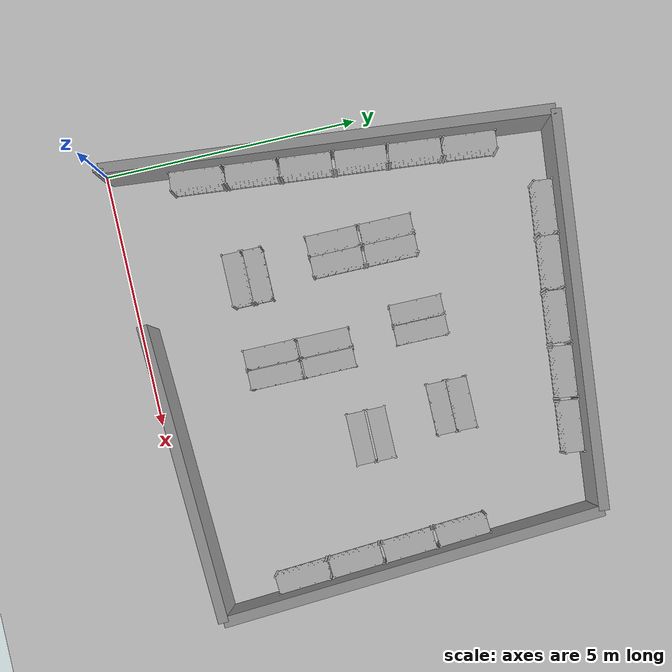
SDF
<sdf version="1.6">
  <world name="default">
    <light name="sun" type="directional">
      <cast_shadows>1</cast_shadows>
      <pose frame="">0 0 10 0 -0 0</pose>
      <diffuse>0.8 0.8 0.8 1</diffuse>
      <specular>0.2 0.2 0.2 1</specular>
      <attenuation>
        <range>1000</range>
        <constant>0.9</constant>
        <linear>0.01</linear>
        <quadratic>0.001</quadratic>
      </attenuation>
      <direction>-0.5 0.1 -0.9</direction>
    </light>
    <model name="ground_plane">
      <static>1</static>
      <link name="link">
        <collision name="collision">
          <geometry>
            <plane>
              <normal>0 0 1</normal>
              <size>100 100</size>
            </plane>
          </geometry>
          <surface>
            <contact>
              <collide_bitmask>65535</collide_bitmask>
              <ode />
            </contact>
            <friction>
              <ode>
                <mu>1000</mu>
                <mu2>1000</mu2>
              </ode>
              <torsional>
                <ode />
              </torsional>
            </friction>
            <bounce />
          </surface>
          <max_contacts>10</max_contacts>
        </collision>
        <visual name="visual">
          <cast_shadows>0</cast_shadows>
          <geometry>
            <plane>
              <normal>0 0 1</normal>
              <size>100 100</size>
            </plane>
          </geometry>
          <material>
            <script>
              <uri>file://media/materials/scripts/gazebo.material</uri>
              <name>Gazebo/Grey</name>
            </script>
          </material>
        </visual>
        <self_collide>0</self_collide>
        <enable_wind>0</enable_wind>
        <kinematic>0</kinematic>
      </link>
    </model>
    <gravity>0 0 -9.8</gravity>
    <magnetic_field>6e-06 2.3e-05 -4.2e-05</magnetic_field>
    <atmosphere type="adiabatic" />
    <physics name="default_physics" default="0" type="ode">
      <max_step_size>0.001</max_step_size>
      <real_time_factor>1</real_time_factor>
      <real_time_update_rate>1000</real_time_update_rate>
    </physics>
    <scene>
      <ambient>0.4 0.4 0.4 1</ambient>
      <background>0.7 0.7 0.7 1</background>
      <shadows>1</shadows>
    </scene>
    <audio>
      <device>default</device>
    </audio>
    <wind />
    <spherical_coordinates>
      <surface_model>EARTH_WGS84</surface_model>
      <latitude_deg>0</latitude_deg>
      <longitude_deg>0</longitude_deg>
      <elevation>0</elevation>
      <heading_deg>0</heading_deg>
    </spherical_coordinates>
    <gui fullscreen="0">
      <camera name="user_camera">
        <pose frame="">5.5458 -17.3868 19.7357 0 0.841797 1.67218</pose>
        <view_controller>orbit</view_controller>
        <projection_type>perspective</projection_type>
      </camera>
    </gui>
    <plugin name="ActorPosesPlugin" filename="libActorPosesPlugin.so" />
    <model name="store_shelf_moduled_0">
      <link name="link">
        <collision name="collision">
          <geometry>
            <mesh>
              <uri>model://store_shelf_moduled/meshes/store_shelf_moduled.dae</uri>
            </mesh>
          </geometry>
        </collision>
        <visual name="visual">
          <geometry>
            <mesh>
              <uri>model://store_shelf_moduled/meshes/store_shelf_moduled.dae</uri>
            </mesh>
          </geometry>
        </visual>
        <inertial>
          <mass>1000</mass>
          <inertia>
            <ixx>840083</ixx>
            <ixy>0</ixy>
            <ixz>0</ixz>
            <iyy>475500</iyy>
            <iyz>0</iyz>
            <izz>1.30208e+06</izz>
          </inertia>
        </inertial>
        <self_collide>0</self_collide>
        <enable_wind>0</enable_wind>
        <kinematic>0</kinematic>
      </link>
      <static>1</static>
      <pose frame="">8.680195 1.563754 0 0 0 1.6333</pose>
    </model>
    <model name="store_shelf_moduled_1">
      <link name="link">
        <collision name="collision">
          <geometry>
            <mesh>
              <uri>model://store_shelf_moduled/meshes/store_shelf_moduled.dae</uri>
            </mesh>
          </geometry>
        </collision>
        <visual name="visual">
          <geometry>
            <mesh>
              <uri>model://store_shelf_moduled/meshes/store_shelf_moduled.dae</uri>
            </mesh>
          </geometry>
        </visual>
        <inertial>
          <mass>1000</mass>
          <inertia>
            <ixx>840083</ixx>
            <ixy>0</ixy>
            <ixz>0</ixz>
            <iyy>475500</iyy>
            <iyz>0</iyz>
            <izz>1.30208e+06</izz>
          </inertia>
        </inertial>
        <self_collide>0</self_collide>
        <enable_wind>0</enable_wind>
        <kinematic>0</kinematic>
      </link>
      <static>1</static>
      <pose frame="">8.610195 2.623754 0 0 0 1.6333</pose>
    </model>
    <model name="store_shelf_moduled_2">
      <link name="link">
        <collision name="collision">
          <geometry>
            <mesh>
              <uri>model://store_shelf_moduled/meshes/store_shelf_moduled.dae</uri>
            </mesh>
          </geometry>
        </collision>
        <visual name="visual">
          <geometry>
            <mesh>
              <uri>model://store_shelf_moduled/meshes/store_shelf_moduled.dae</uri>
            </mesh>
          </geometry>
        </visual>
        <inertial>
          <mass>1000</mass>
          <inertia>
            <ixx>840083</ixx>
            <ixy>0</ixy>
            <ixz>0</ixz>
            <iyy>475500</iyy>
            <iyz>0</iyz>
            <izz>1.30208e+06</izz>
          </inertia>
        </inertial>
        <self_collide>0</self_collide>
        <enable_wind>0</enable_wind>
        <kinematic>0</kinematic>
      </link>
      <static>1</static>
      <pose frame="">8.550196 3.683754 0 0 0 1.6333</pose>
    </model>
    <model name="store_shelf_moduled_3">
      <link name="link">
        <collision name="collision">
          <geometry>
            <mesh>
              <uri>model://store_shelf_moduled/meshes/store_shelf_moduled.dae</uri>
            </mesh>
          </geometry>
        </collision>
        <visual name="visual">
          <geometry>
            <mesh>
              <uri>model://store_shelf_moduled/meshes/store_shelf_moduled.dae</uri>
            </mesh>
          </geometry>
        </visual>
        <inertial>
          <mass>1000</mass>
          <inertia>
            <ixx>840083</ixx>
            <ixy>0</ixy>
            <ixz>0</ixz>
            <iyy>475500</iyy>
            <iyz>0</iyz>
            <izz>1.30208e+06</izz>
          </inertia>
        </inertial>
        <self_collide>0</self_collide>
        <enable_wind>0</enable_wind>
        <kinematic>0</kinematic>
      </link>
      <static>1</static>
      <pose frame="">8.480195 4.743753 0 0 0 1.6333</pose>
    </model>
    <model name="store_shelf_moduled_4">
      <link name="link">
        <collision name="collision">
          <geometry>
            <mesh>
              <uri>model://store_shelf_moduled/meshes/store_shelf_moduled.dae</uri>
            </mesh>
          </geometry>
        </collision>
        <visual name="visual">
          <geometry>
            <mesh>
              <uri>model://store_shelf_moduled/meshes/store_shelf_moduled.dae</uri>
            </mesh>
          </geometry>
        </visual>
        <inertial>
          <mass>1000</mass>
          <inertia>
            <ixx>840083</ixx>
            <ixy>0</ixy>
            <ixz>0</ixz>
            <iyy>475500</iyy>
            <iyz>0</iyz>
            <izz>1.30208e+06</izz>
          </inertia>
        </inertial>
        <self_collide>0</self_collide>
        <enable_wind>0</enable_wind>
        <kinematic>0</kinematic>
      </link>
      <static>1</static>
      <pose frame="">7.319379 7.880566 0 0 0 3.035187</pose>
    </model>
    <model name="store_shelf_moduled_5">
      <link name="link">
        <collision name="collision">
          <geometry>
            <mesh>
              <uri>model://store_shelf_moduled/meshes/store_shelf_moduled.dae</uri>
            </mesh>
          </geometry>
        </collision>
        <visual name="visual">
          <geometry>
            <mesh>
              <uri>model://store_shelf_moduled/meshes/store_shelf_moduled.dae</uri>
            </mesh>
          </geometry>
        </visual>
        <inertial>
          <mass>1000</mass>
          <inertia>
            <ixx>840083</ixx>
            <ixy>0</ixy>
            <ixz>0</ixz>
            <iyy>475500</iyy>
            <iyz>0</iyz>
            <izz>1.30208e+06</izz>
          </inertia>
        </inertial>
        <self_collide>0</self_collide>
        <enable_wind>0</enable_wind>
        <kinematic>0</kinematic>
      </link>
      <static>1</static>
      <pose frame="">6.269379 7.990566 0 0 0 3.035187</pose>
    </model>
    <model name="store_shelf_moduled_6">
      <link name="link">
        <collision name="collision">
          <geometry>
            <mesh>
              <uri>model://store_shelf_moduled/meshes/store_shelf_moduled.dae</uri>
            </mesh>
          </geometry>
        </collision>
        <visual name="visual">
          <geometry>
            <mesh>
              <uri>model://store_shelf_moduled/meshes/store_shelf_moduled.dae</uri>
            </mesh>
          </geometry>
        </visual>
        <inertial>
          <mass>1000</mass>
          <inertia>
            <ixx>840083</ixx>
            <ixy>0</ixy>
            <ixz>0</ixz>
            <iyy>475500</iyy>
            <iyz>0</iyz>
            <izz>1.30208e+06</izz>
          </inertia>
        </inertial>
        <self_collide>0</self_collide>
        <enable_wind>0</enable_wind>
        <kinematic>0</kinematic>
      </link>
      <static>1</static>
      <pose frame="">5.209379 8.100566 0 0 0 3.035187</pose>
    </model>
    <model name="store_shelf_moduled_7">
      <link name="link">
        <collision name="collision">
          <geometry>
            <mesh>
              <uri>model://store_shelf_moduled/meshes/store_shelf_moduled.dae</uri>
            </mesh>
          </geometry>
        </collision>
        <visual name="visual">
          <geometry>
            <mesh>
              <uri>model://store_shelf_moduled/meshes/store_shelf_moduled.dae</uri>
            </mesh>
          </geometry>
        </visual>
        <inertial>
          <mass>1000</mass>
          <inertia>
            <ixx>840083</ixx>
            <ixy>0</ixy>
            <ixz>0</ixz>
            <iyy>475500</iyy>
            <iyz>0</iyz>
            <izz>1.30208e+06</izz>
          </inertia>
        </inertial>
        <self_collide>0</self_collide>
        <enable_wind>0</enable_wind>
        <kinematic>0</kinematic>
      </link>
      <static>1</static>
      <pose frame="">4.159379 8.220566 0 0 0 3.035187</pose>
    </model>
    <model name="store_shelf_moduled_8">
      <link name="link">
        <collision name="collision">
          <geometry>
            <mesh>
              <uri>model://store_shelf_moduled/meshes/store_shelf_moduled.dae</uri>
            </mesh>
          </geometry>
        </collision>
        <visual name="visual">
          <geometry>
            <mesh>
              <uri>model://store_shelf_moduled/meshes/store_shelf_moduled.dae</uri>
            </mesh>
          </geometry>
        </visual>
        <inertial>
          <mass>1000</mass>
          <inertia>
            <ixx>840083</ixx>
            <ixy>0</ixy>
            <ixz>0</ixz>
            <iyy>475500</iyy>
            <iyz>0</iyz>
            <izz>1.30208e+06</izz>
          </inertia>
        </inertial>
        <self_collide>0</self_collide>
        <enable_wind>0</enable_wind>
        <kinematic>0</kinematic>
      </link>
      <static>1</static>
      <pose frame="">3.09938 8.330565 0 0 0 3.035187</pose>
    </model>
    <model name="store_shelf_moduled_9">
      <link name="link">
        <collision name="collision">
          <geometry>
            <mesh>
              <uri>model://store_shelf_moduled/meshes/store_shelf_moduled.dae</uri>
            </mesh>
          </geometry>
        </collision>
        <visual name="visual">
          <geometry>
            <mesh>
              <uri>model://store_shelf_moduled/meshes/store_shelf_moduled.dae</uri>
            </mesh>
          </geometry>
        </visual>
        <inertial>
          <mass>1000</mass>
          <inertia>
            <ixx>840083</ixx>
            <ixy>0</ixy>
            <ixz>0</ixz>
            <iyy>475500</iyy>
            <iyz>0</iyz>
            <izz>1.30208e+06</izz>
          </inertia>
        </inertial>
        <self_collide>0</self_collide>
        <enable_wind>0</enable_wind>
        <kinematic>0</kinematic>
      </link>
      <static>1</static>
      <pose frame="">0.8995671 7.600706 0 0 0 -1.663876</pose>
    </model>
    <model name="store_shelf_moduled_10">
      <link name="link">
        <collision name="collision">
          <geometry>
            <mesh>
              <uri>model://store_shelf_moduled/meshes/store_shelf_moduled.dae</uri>
            </mesh>
          </geometry>
        </collision>
        <visual name="visual">
          <geometry>
            <mesh>
              <uri>model://store_shelf_moduled/meshes/store_shelf_moduled.dae</uri>
            </mesh>
          </geometry>
        </visual>
        <inertial>
          <mass>1000</mass>
          <inertia>
            <ixx>840083</ixx>
            <ixy>0</ixy>
            <ixz>0</ixz>
            <iyy>475500</iyy>
            <iyz>0</iyz>
            <izz>1.30208e+06</izz>
          </inertia>
        </inertial>
        <self_collide>0</self_collide>
        <enable_wind>0</enable_wind>
        <kinematic>0</kinematic>
      </link>
      <static>1</static>
      <pose frame="">0.7995671 6.540706 0 0 0 -1.663876</pose>
    </model>
    <model name="store_shelf_moduled_11">
      <link name="link">
        <collision name="collision">
          <geometry>
            <mesh>
              <uri>model://store_shelf_moduled/meshes/store_shelf_moduled.dae</uri>
            </mesh>
          </geometry>
        </collision>
        <visual name="visual">
          <geometry>
            <mesh>
              <uri>model://store_shelf_moduled/meshes/store_shelf_moduled.dae</uri>
            </mesh>
          </geometry>
        </visual>
        <inertial>
          <mass>1000</mass>
          <inertia>
            <ixx>840083</ixx>
            <ixy>0</ixy>
            <ixz>0</ixz>
            <iyy>475500</iyy>
            <iyz>0</iyz>
            <izz>1.30208e+06</izz>
          </inertia>
        </inertial>
        <self_collide>0</self_collide>
        <enable_wind>0</enable_wind>
        <kinematic>0</kinematic>
      </link>
      <static>1</static>
      <pose frame="">0.6995671 5.490705 0 0 0 -1.663876</pose>
    </model>
    <model name="store_shelf_moduled_12">
      <link name="link">
        <collision name="collision">
          <geometry>
            <mesh>
              <uri>model://store_shelf_moduled/meshes/store_shelf_moduled.dae</uri>
            </mesh>
          </geometry>
        </collision>
        <visual name="visual">
          <geometry>
            <mesh>
              <uri>model://store_shelf_moduled/meshes/store_shelf_moduled.dae</uri>
            </mesh>
          </geometry>
        </visual>
        <inertial>
          <mass>1000</mass>
          <inertia>
            <ixx>840083</ixx>
            <ixy>0</ixy>
            <ixz>0</ixz>
            <iyy>475500</iyy>
            <iyz>0</iyz>
            <izz>1.30208e+06</izz>
          </inertia>
        </inertial>
        <self_collide>0</self_collide>
        <enable_wind>0</enable_wind>
        <kinematic>0</kinematic>
      </link>
      <static>1</static>
      <pose frame="">0.5995671 4.430706 0 0 0 -1.663876</pose>
    </model>
    <model name="store_shelf_moduled_13">
      <link name="link">
        <collision name="collision">
          <geometry>
            <mesh>
              <uri>model://store_shelf_moduled/meshes/store_shelf_moduled.dae</uri>
            </mesh>
          </geometry>
        </collision>
        <visual name="visual">
          <geometry>
            <mesh>
              <uri>model://store_shelf_moduled/meshes/store_shelf_moduled.dae</uri>
            </mesh>
          </geometry>
        </visual>
        <inertial>
          <mass>1000</mass>
          <inertia>
            <ixx>840083</ixx>
            <ixy>0</ixy>
            <ixz>0</ixz>
            <iyy>475500</iyy>
            <iyz>0</iyz>
            <izz>1.30208e+06</izz>
          </inertia>
        </inertial>
        <self_collide>0</self_collide>
        <enable_wind>0</enable_wind>
        <kinematic>0</kinematic>
      </link>
      <static>1</static>
      <pose frame="">0.4995671 3.380706 0 0 0 -1.663876</pose>
    </model>
    <model name="store_shelf_moduled_14">
      <link name="link">
        <collision name="collision">
          <geometry>
            <mesh>
              <uri>model://store_shelf_moduled/meshes/store_shelf_moduled.dae</uri>
            </mesh>
          </geometry>
        </collision>
        <visual name="visual">
          <geometry>
            <mesh>
              <uri>model://store_shelf_moduled/meshes/store_shelf_moduled.dae</uri>
            </mesh>
          </geometry>
        </visual>
        <inertial>
          <mass>1000</mass>
          <inertia>
            <ixx>840083</ixx>
            <ixy>0</ixy>
            <ixz>0</ixz>
            <iyy>475500</iyy>
            <iyz>0</iyz>
            <izz>1.30208e+06</izz>
          </inertia>
        </inertial>
        <self_collide>0</self_collide>
        <enable_wind>0</enable_wind>
        <kinematic>0</kinematic>
      </link>
      <static>1</static>
      <pose frame="">0.3995671 2.320706 0 0 0 -1.663876</pose>
    </model>
    <model name="store_shelf_moduled_15">
      <link name="link">
        <collision name="collision">
          <geometry>
            <mesh>
              <uri>model://store_shelf_moduled/meshes/store_shelf_moduled.dae</uri>
            </mesh>
          </geometry>
        </collision>
        <visual name="visual">
          <geometry>
            <mesh>
              <uri>model://store_shelf_moduled/meshes/store_shelf_moduled.dae</uri>
            </mesh>
          </geometry>
        </visual>
        <inertial>
          <mass>1000</mass>
          <inertia>
            <ixx>840083</ixx>
            <ixy>0</ixy>
            <ixz>0</ixz>
            <iyy>475500</iyy>
            <iyz>0</iyz>
            <izz>1.30208e+06</izz>
          </inertia>
        </inertial>
        <self_collide>0</self_collide>
        <enable_wind>0</enable_wind>
        <kinematic>0</kinematic>
      </link>
      <static>1</static>
      <pose frame="">2.07 2.31 0 0 0 0</pose>
    </model>
    <model name="store_shelf_moduled_16">
      <link name="link">
        <collision name="collision">
          <geometry>
            <mesh>
              <uri>model://store_shelf_moduled/meshes/store_shelf_moduled.dae</uri>
            </mesh>
          </geometry>
        </collision>
        <visual name="visual">
          <geometry>
            <mesh>
              <uri>model://store_shelf_moduled/meshes/store_shelf_moduled.dae</uri>
            </mesh>
          </geometry>
        </visual>
        <inertial>
          <mass>1000</mass>
          <inertia>
            <ixx>840083</ixx>
            <ixy>0</ixy>
            <ixz>0</ixz>
            <iyy>475500</iyy>
            <iyz>0</iyz>
            <izz>1.30208e+06</izz>
          </inertia>
        </inertial>
        <self_collide>0</self_collide>
        <enable_wind>0</enable_wind>
        <kinematic>0</kinematic>
      </link>
      <static>1</static>
      <pose frame="">3.13 2.31 0 0 0 -3.141593</pose>
    </model>
    <model name="store_shelf_moduled_17">
      <link name="link">
        <collision name="collision">
          <geometry>
            <mesh>
              <uri>model://store_shelf_moduled/meshes/store_shelf_moduled.dae</uri>
            </mesh>
          </geometry>
        </collision>
        <visual name="visual">
          <geometry>
            <mesh>
              <uri>model://store_shelf_moduled/meshes/store_shelf_moduled.dae</uri>
            </mesh>
          </geometry>
        </visual>
        <inertial>
          <mass>1000</mass>
          <inertia>
            <ixx>840083</ixx>
            <ixy>0</ixy>
            <ixz>0</ixz>
            <iyy>475500</iyy>
            <iyz>0</iyz>
            <izz>1.30208e+06</izz>
          </inertia>
        </inertial>
        <self_collide>0</self_collide>
        <enable_wind>0</enable_wind>
        <kinematic>0</kinematic>
      </link>
      <static>1</static>
      <pose frame="">2.49 3.53 0 0 0 1.570796</pose>
    </model>
    <model name="store_shelf_moduled_18">
      <link name="link">
        <collision name="collision">
          <geometry>
            <mesh>
              <uri>model://store_shelf_moduled/meshes/store_shelf_moduled.dae</uri>
            </mesh>
          </geometry>
        </collision>
        <visual name="visual">
          <geometry>
            <mesh>
              <uri>model://store_shelf_moduled/meshes/store_shelf_moduled.dae</uri>
            </mesh>
          </geometry>
        </visual>
        <inertial>
          <mass>1000</mass>
          <inertia>
            <ixx>840083</ixx>
            <ixy>0</ixy>
            <ixz>0</ixz>
            <iyy>475500</iyy>
            <iyz>0</iyz>
            <izz>1.30208e+06</izz>
          </inertia>
        </inertial>
        <self_collide>0</self_collide>
        <enable_wind>0</enable_wind>
        <kinematic>0</kinematic>
      </link>
      <static>1</static>
      <pose frame="">2.49 4.59 0 0 0 -1.570796</pose>
    </model>
    <model name="store_shelf_moduled_19">
      <link name="link">
        <collision name="collision">
          <geometry>
            <mesh>
              <uri>model://store_shelf_moduled/meshes/store_shelf_moduled.dae</uri>
            </mesh>
          </geometry>
        </collision>
        <visual name="visual">
          <geometry>
            <mesh>
              <uri>model://store_shelf_moduled/meshes/store_shelf_moduled.dae</uri>
            </mesh>
          </geometry>
        </visual>
        <inertial>
          <mass>1000</mass>
          <inertia>
            <ixx>840083</ixx>
            <ixy>0</ixy>
            <ixz>0</ixz>
            <iyy>475500</iyy>
            <iyz>0</iyz>
            <izz>1.30208e+06</izz>
          </inertia>
        </inertial>
        <self_collide>0</self_collide>
        <enable_wind>0</enable_wind>
        <kinematic>0</kinematic>
      </link>
      <static>1</static>
      <pose frame="">2.49 4.59 0 0 0 1.570796</pose>
    </model>
    <model name="store_shelf_moduled_20">
      <link name="link">
        <collision name="collision">
          <geometry>
            <mesh>
              <uri>model://store_shelf_moduled/meshes/store_shelf_moduled.dae</uri>
            </mesh>
          </geometry>
        </collision>
        <visual name="visual">
          <geometry>
            <mesh>
              <uri>model://store_shelf_moduled/meshes/store_shelf_moduled.dae</uri>
            </mesh>
          </geometry>
        </visual>
        <inertial>
          <mass>1000</mass>
          <inertia>
            <ixx>840083</ixx>
            <ixy>0</ixy>
            <ixz>0</ixz>
            <iyy>475500</iyy>
            <iyz>0</iyz>
            <izz>1.30208e+06</izz>
          </inertia>
        </inertial>
        <self_collide>0</self_collide>
        <enable_wind>0</enable_wind>
        <kinematic>0</kinematic>
      </link>
      <static>1</static>
      <pose frame="">2.49 5.65 0 0 0 -1.570796</pose>
    </model>
    <model name="store_shelf_moduled_21">
      <link name="link">
        <collision name="collision">
          <geometry>
            <mesh>
              <uri>model://store_shelf_moduled/meshes/store_shelf_moduled.dae</uri>
            </mesh>
          </geometry>
        </collision>
        <visual name="visual">
          <geometry>
            <mesh>
              <uri>model://store_shelf_moduled/meshes/store_shelf_moduled.dae</uri>
            </mesh>
          </geometry>
        </visual>
        <inertial>
          <mass>1000</mass>
          <inertia>
            <ixx>840083</ixx>
            <ixy>0</ixy>
            <ixz>0</ixz>
            <iyy>475500</iyy>
            <iyz>0</iyz>
            <izz>1.30208e+06</izz>
          </inertia>
        </inertial>
        <self_collide>0</self_collide>
        <enable_wind>0</enable_wind>
        <kinematic>0</kinematic>
      </link>
      <static>1</static>
      <pose frame="">5.57 3.95 0 0 0 0</pose>
    </model>
    <model name="store_shelf_moduled_22">
      <link name="link">
        <collision name="collision">
          <geometry>
            <mesh>
              <uri>model://store_shelf_moduled/meshes/store_shelf_moduled.dae</uri>
            </mesh>
          </geometry>
        </collision>
        <visual name="visual">
          <geometry>
            <mesh>
              <uri>model://store_shelf_moduled/meshes/store_shelf_moduled.dae</uri>
            </mesh>
          </geometry>
        </visual>
        <inertial>
          <mass>1000</mass>
          <inertia>
            <ixx>840083</ixx>
            <ixy>0</ixy>
            <ixz>0</ixz>
            <iyy>475500</iyy>
            <iyz>0</iyz>
            <izz>1.30208e+06</izz>
          </inertia>
        </inertial>
        <self_collide>0</self_collide>
        <enable_wind>0</enable_wind>
        <kinematic>0</kinematic>
      </link>
      <static>1</static>
      <pose frame="">6.63 3.95 0 0 0 -3.141593</pose>
    </model>
    <model name="store_shelf_moduled_23">
      <link name="link">
        <collision name="collision">
          <geometry>
            <mesh>
              <uri>model://store_shelf_moduled/meshes/store_shelf_moduled.dae</uri>
            </mesh>
          </geometry>
        </collision>
        <visual name="visual">
          <geometry>
            <mesh>
              <uri>model://store_shelf_moduled/meshes/store_shelf_moduled.dae</uri>
            </mesh>
          </geometry>
        </visual>
        <inertial>
          <mass>1000</mass>
          <inertia>
            <ixx>840083</ixx>
            <ixy>0</ixy>
            <ixz>0</ixz>
            <iyy>475500</iyy>
            <iyz>0</iyz>
            <izz>1.30208e+06</izz>
          </inertia>
        </inertial>
        <self_collide>0</self_collide>
        <enable_wind>0</enable_wind>
        <kinematic>0</kinematic>
      </link>
      <static>1</static>
      <pose frame="">4.35 1.89 0 0 0 1.570796</pose>
    </model>
    <model name="store_shelf_moduled_24">
      <link name="link">
        <collision name="collision">
          <geometry>
            <mesh>
              <uri>model://store_shelf_moduled/meshes/store_shelf_moduled.dae</uri>
            </mesh>
          </geometry>
        </collision>
        <visual name="visual">
          <geometry>
            <mesh>
              <uri>model://store_shelf_moduled/meshes/store_shelf_moduled.dae</uri>
            </mesh>
          </geometry>
        </visual>
        <inertial>
          <mass>1000</mass>
          <inertia>
            <ixx>840083</ixx>
            <ixy>0</ixy>
            <ixz>0</ixz>
            <iyy>475500</iyy>
            <iyz>0</iyz>
            <izz>1.30208e+06</izz>
          </inertia>
        </inertial>
        <self_collide>0</self_collide>
        <enable_wind>0</enable_wind>
        <kinematic>0</kinematic>
      </link>
      <static>1</static>
      <pose frame="">4.35 2.95 0 0 0 -1.570796</pose>
    </model>
    <model name="store_shelf_moduled_25">
      <link name="link">
        <collision name="collision">
          <geometry>
            <mesh>
              <uri>model://store_shelf_moduled/meshes/store_shelf_moduled.dae</uri>
            </mesh>
          </geometry>
        </collision>
        <visual name="visual">
          <geometry>
            <mesh>
              <uri>model://store_shelf_moduled/meshes/store_shelf_moduled.dae</uri>
            </mesh>
          </geometry>
        </visual>
        <inertial>
          <mass>1000</mass>
          <inertia>
            <ixx>840083</ixx>
            <ixy>0</ixy>
            <ixz>0</ixz>
            <iyy>475500</iyy>
            <iyz>0</iyz>
            <izz>1.30208e+06</izz>
          </inertia>
        </inertial>
        <self_collide>0</self_collide>
        <enable_wind>0</enable_wind>
        <kinematic>0</kinematic>
      </link>
      <static>1</static>
      <pose frame="">4.35 2.95 0 0 0 1.570796</pose>
    </model>
    <model name="store_shelf_moduled_26">
      <link name="link">
        <collision name="collision">
          <geometry>
            <mesh>
              <uri>model://store_shelf_moduled/meshes/store_shelf_moduled.dae</uri>
            </mesh>
          </geometry>
        </collision>
        <visual name="visual">
          <geometry>
            <mesh>
              <uri>model://store_shelf_moduled/meshes/store_shelf_moduled.dae</uri>
            </mesh>
          </geometry>
        </visual>
        <inertial>
          <mass>1000</mass>
          <inertia>
            <ixx>840083</ixx>
            <ixy>0</ixy>
            <ixz>0</ixz>
            <iyy>475500</iyy>
            <iyz>0</iyz>
            <izz>1.30208e+06</izz>
          </inertia>
        </inertial>
        <self_collide>0</self_collide>
        <enable_wind>0</enable_wind>
        <kinematic>0</kinematic>
      </link>
      <static>1</static>
      <pose frame="">4.35 4.01 0 0 0 -1.570796</pose>
    </model>
    <model name="store_shelf_moduled_27">
      <link name="link">
        <collision name="collision">
          <geometry>
            <mesh>
              <uri>model://store_shelf_moduled/meshes/store_shelf_moduled.dae</uri>
            </mesh>
          </geometry>
        </collision>
        <visual name="visual">
          <geometry>
            <mesh>
              <uri>model://store_shelf_moduled/meshes/store_shelf_moduled.dae</uri>
            </mesh>
          </geometry>
        </visual>
        <inertial>
          <mass>1000</mass>
          <inertia>
            <ixx>840083</ixx>
            <ixy>0</ixy>
            <ixz>0</ixz>
            <iyy>475500</iyy>
            <iyz>0</iyz>
            <izz>1.30208e+06</izz>
          </inertia>
        </inertial>
        <self_collide>0</self_collide>
        <enable_wind>0</enable_wind>
        <kinematic>0</kinematic>
      </link>
      <static>1</static>
      <pose frame="">5.35 5.59 0 0 0 0</pose>
    </model>
    <model name="store_shelf_moduled_28">
      <link name="link">
        <collision name="collision">
          <geometry>
            <mesh>
              <uri>model://store_shelf_moduled/meshes/store_shelf_moduled.dae</uri>
            </mesh>
          </geometry>
        </collision>
        <visual name="visual">
          <geometry>
            <mesh>
              <uri>model://store_shelf_moduled/meshes/store_shelf_moduled.dae</uri>
            </mesh>
          </geometry>
        </visual>
        <inertial>
          <mass>1000</mass>
          <inertia>
            <ixx>840083</ixx>
            <ixy>0</ixy>
            <ixz>0</ixz>
            <iyy>475500</iyy>
            <iyz>0</iyz>
            <izz>1.30208e+06</izz>
          </inertia>
        </inertial>
        <self_collide>0</self_collide>
        <enable_wind>0</enable_wind>
        <kinematic>0</kinematic>
      </link>
      <static>1</static>
      <pose frame="">6.41 5.59 0 0 0 -3.141593</pose>
    </model>
    <model name="store_shelf_moduled_29">
      <link name="link">
        <collision name="collision">
          <geometry>
            <mesh>
              <uri>model://store_shelf_moduled/meshes/store_shelf_moduled.dae</uri>
            </mesh>
          </geometry>
        </collision>
        <visual name="visual">
          <geometry>
            <mesh>
              <uri>model://store_shelf_moduled/meshes/store_shelf_moduled.dae</uri>
            </mesh>
          </geometry>
        </visual>
        <inertial>
          <mass>1000</mass>
          <inertia>
            <ixx>840083</ixx>
            <ixy>0</ixy>
            <ixz>0</ixz>
            <iyy>475500</iyy>
            <iyz>0</iyz>
            <izz>1.30208e+06</izz>
          </inertia>
        </inertial>
        <self_collide>0</self_collide>
        <enable_wind>0</enable_wind>
        <kinematic>0</kinematic>
      </link>
      <static>1</static>
      <pose frame="">4.13 4.81 0 0 0 1.570796</pose>
    </model>
    <model name="store_shelf_moduled_30">
      <link name="link">
        <collision name="collision">
          <geometry>
            <mesh>
              <uri>model://store_shelf_moduled/meshes/store_shelf_moduled.dae</uri>
            </mesh>
          </geometry>
        </collision>
        <visual name="visual">
          <geometry>
            <mesh>
              <uri>model://store_shelf_moduled/meshes/store_shelf_moduled.dae</uri>
            </mesh>
          </geometry>
        </visual>
        <inertial>
          <mass>1000</mass>
          <inertia>
            <ixx>840083</ixx>
            <ixy>0</ixy>
            <ixz>0</ixz>
            <iyy>475500</iyy>
            <iyz>0</iyz>
            <izz>1.30208e+06</izz>
          </inertia>
        </inertial>
        <self_collide>0</self_collide>
        <enable_wind>0</enable_wind>
        <kinematic>0</kinematic>
      </link>
      <static>1</static>
      <pose frame="">4.13 5.87 0 0 0 -1.570796</pose>
    </model>
    <model name="grey_wall0">
      <static>1</static>
      <link name="link">
        <pose frame="">0.125 0.1 1.4 0 0 0</pose>
        <visual name="visual">
          <cast_shadows>0</cast_shadows>
          <geometry>
            <box>
              <size>0.05 0.2 2.8</size>
            </box>
          </geometry>
          <material>
            <name>vrc/grey_wall</name>
            <script>
              <uri>model://grey_wall/materials/scripts</uri>
              <uri>model://grey_wall/materials/textures</uri>
              <name>vrc/grey_wall</name>
            </script>
          </material>
        </visual>
        <collision name="collision">
          <geometry>
            <box>
              <size>0.05 0.2 2.8</size>
            </box>
          </geometry>
          <max_contacts>5</max_contacts>
        </collision>
      </link>
    </model>
    <model name="grey_wall1">
      <static>1</static>
      <link name="link">
        <pose frame="">5.995 0.385 1.4 0 0 0.04725027</pose>
        <visual name="visual">
          <cast_shadows>0</cast_shadows>
          <geometry>
            <box>
              <size>5.71638 0.2 2.8</size>
            </box>
          </geometry>
          <material>
            <name>vrc/grey_wall</name>
            <script>
              <uri>model://grey_wall/materials/scripts</uri>
              <uri>model://grey_wall/materials/textures</uri>
              <name>vrc/grey_wall</name>
            </script>
          </material>
        </visual>
        <collision name="collision">
          <geometry>
            <box>
              <size>5.71638 0.2 2.8</size>
            </box>
          </geometry>
          <max_contacts>5</max_contacts>
        </collision>
      </link>
    </model>
    <model name="grey_wall2">
      <static>1</static>
      <link name="link">
        <pose frame="">8.62 4.195 1.4 0 0 1.6333</pose>
        <visual name="visual">
          <cast_shadows>0</cast_shadows>
          <geometry>
            <box>
              <size>7.36438 0.2 2.8</size>
            </box>
          </geometry>
          <material>
            <name>vrc/grey_wall</name>
            <script>
              <uri>model://grey_wall/materials/scripts</uri>
              <uri>model://grey_wall/materials/textures</uri>
              <name>vrc/grey_wall</name>
            </script>
          </material>
        </visual>
        <collision name="collision">
          <geometry>
            <box>
              <size>7.36438 0.2 2.8</size>
            </box>
          </geometry>
          <max_contacts>5</max_contacts>
        </collision>
      </link>
    </model>
    <model name="grey_wall3">
      <static>1</static>
      <link name="link">
        <pose frame="">4.645 8.27 1.4 0 0 3.035187</pose>
        <visual name="visual">
          <cast_shadows>0</cast_shadows>
          <geometry>
            <box>
              <size>7.532602 0.2 2.8</size>
            </box>
          </geometry>
          <material>
            <name>vrc/grey_wall</name>
            <script>
              <uri>model://grey_wall/materials/scripts</uri>
              <uri>model://grey_wall/materials/textures</uri>
              <name>vrc/grey_wall</name>
            </script>
          </material>
        </visual>
        <collision name="collision">
          <geometry>
            <box>
              <size>7.532602 0.2 2.8</size>
            </box>
          </geometry>
          <max_contacts>5</max_contacts>
        </collision>
      </link>
    </model>
    <model name="grey_wall4">
      <static>1</static>
      <link name="link">
        <pose frame="">0.5 4.385 1.4 0 0 -1.663875</pose>
        <visual name="visual">
          <cast_shadows>0</cast_shadows>
          <geometry>
            <box>
              <size>8.607258 0.2 2.8</size>
            </box>
          </geometry>
          <material>
            <name>vrc/grey_wall</name>
            <script>
              <uri>model://grey_wall/materials/scripts</uri>
              <uri>model://grey_wall/materials/textures</uri>
              <name>vrc/grey_wall</name>
            </script>
          </material>
        </visual>
        <collision name="collision">
          <geometry>
            <box>
              <size>8.607258 0.2 2.8</size>
            </box>
          </geometry>
          <max_contacts>5</max_contacts>
        </collision>
      </link>
    </model>
  </world>
</sdf>
